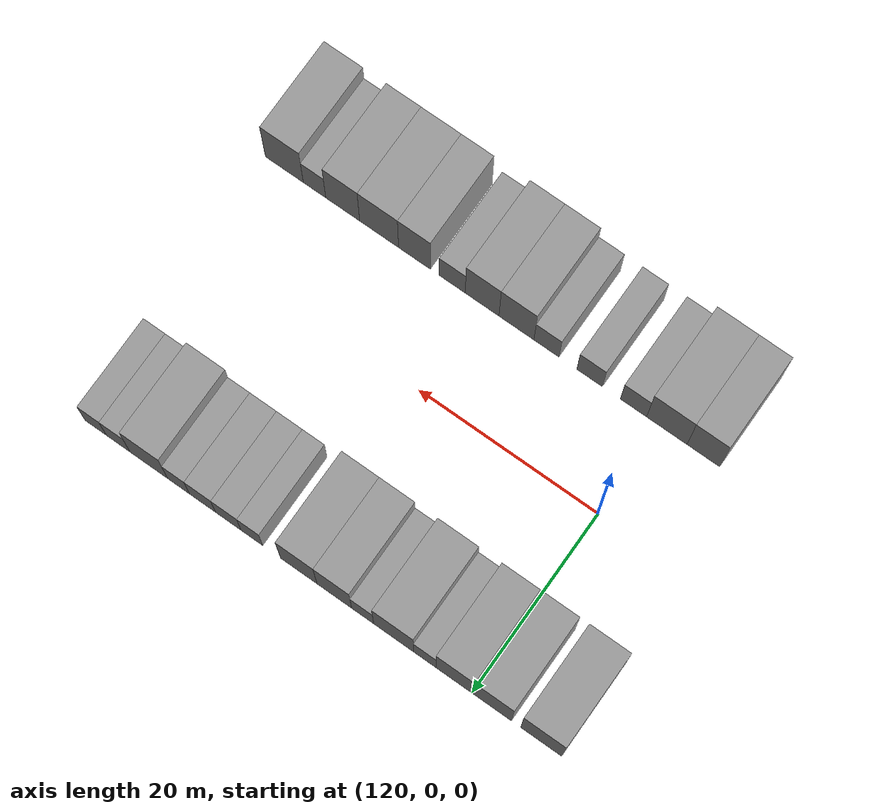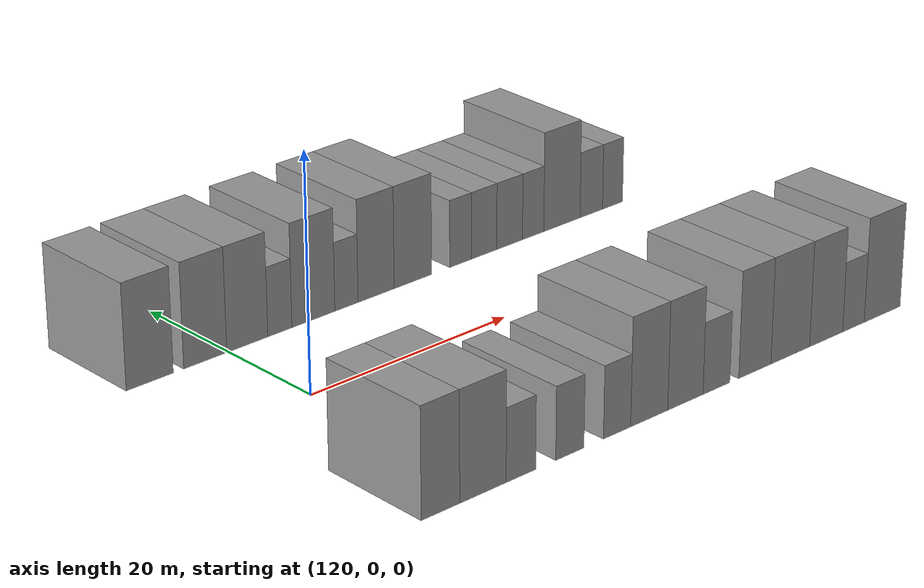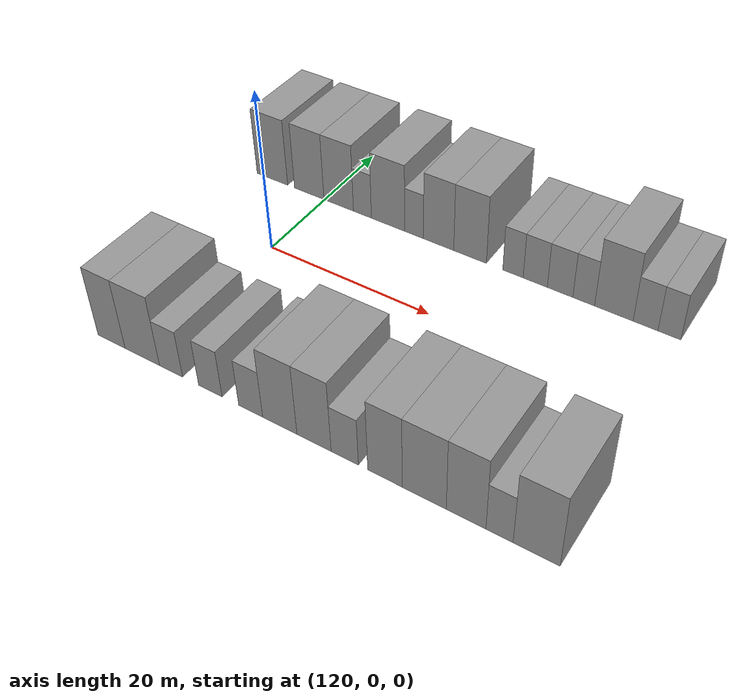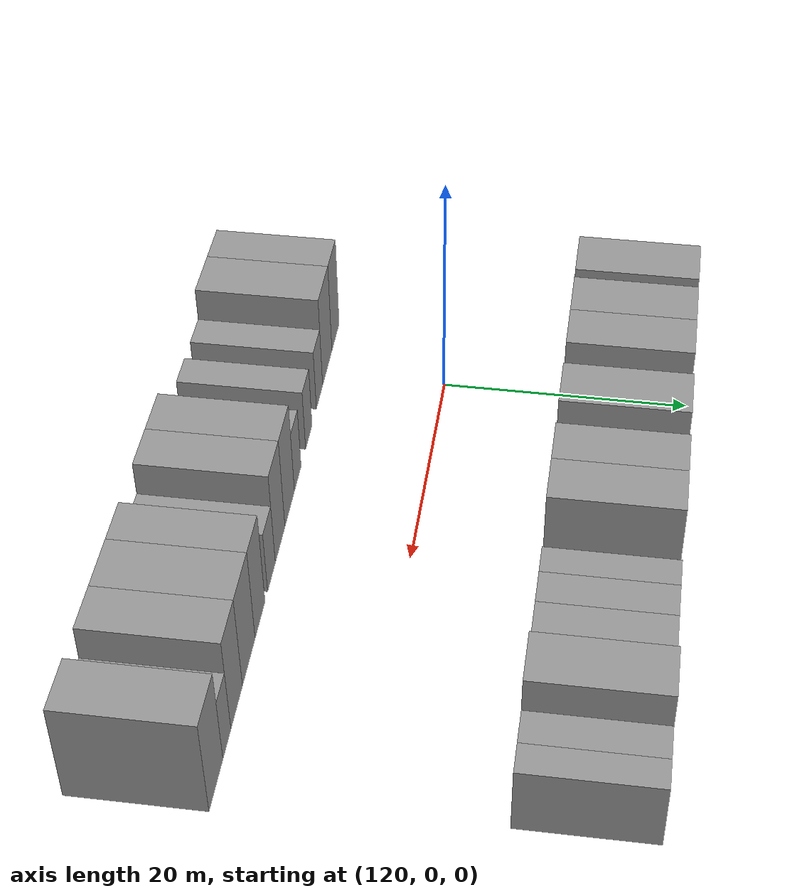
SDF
<sdf version="1.6">
 <world name="default">
  <model name="building_29">
   <static>1</static>
   <pose>112.4363 15.0000 0 0.000000 0.000000 1.570796</pose>
   <link name="link">
    <pose>0 0 4.50 0 0 0</pose>
    <collision name="collision"><geometry><box><size>10.0000 4.4717 9.0000</size></box></geometry></collision>
    <visual name="visual">
     <cast_shadows>0</cast_shadows>
     <geometry><box><size>10.0000 4.4717 9.0000</size></box></geometry>
     <material>
      <script>
       <uri>model://grey_wall/materials/scripts</uri>
       <uri>model://grey_wall/materials/textures</uri>
       <name>vrc/grey_wall</name>
      </script>
     </material>
    </visual>
   </link>
  </model>
  <model name="building_30">
   <static>1</static>
   <pose>117.7677 15.0000 0 0.000000 0.000000 1.570796</pose>
   <link name="link">
    <pose>0 0 4.50 0 0 0</pose>
    <collision name="collision"><geometry><box><size>10.0000 4.1911 9.0000</size></box></geometry></collision>
    <visual name="visual">
     <cast_shadows>0</cast_shadows>
     <geometry><box><size>10.0000 4.1911 9.0000</size></box></geometry>
     <material>
      <script>
       <uri>model://grey_wall/materials/scripts</uri>
       <uri>model://grey_wall/materials/textures</uri>
       <name>vrc/grey_wall</name>
      </script>
     </material>
    </visual>
   </link>
  </model>
  <model name="building_31">
   <static>1</static>
   <pose>121.9125 15.0000 0 0.000000 0.000000 1.570796</pose>
   <link name="link">
    <pose>0 0 4.50 0 0 0</pose>
    <collision name="collision"><geometry><box><size>10.0000 4.0984 9.0000</size></box></geometry></collision>
    <visual name="visual">
     <cast_shadows>0</cast_shadows>
     <geometry><box><size>10.0000 4.0984 9.0000</size></box></geometry>
     <material>
      <script>
       <uri>model://grey_wall/materials/scripts</uri>
       <uri>model://grey_wall/materials/textures</uri>
       <name>vrc/grey_wall</name>
      </script>
     </material>
    </visual>
   </link>
  </model>
  <model name="building_32">
   <static>1</static>
   <pose>125.1835 15.0000 0 0.000000 0.000000 1.570796</pose>
   <link name="link">
    <pose>0 0 3.00 0 0 0</pose>
    <collision name="collision"><geometry><box><size>10.0000 2.4436 6.0000</size></box></geometry></collision>
    <visual name="visual">
     <cast_shadows>0</cast_shadows>
     <geometry><box><size>10.0000 2.4436 6.0000</size></box></geometry>
     <material>
      <script>
       <uri>model://grey_wall/materials/scripts</uri>
       <uri>model://grey_wall/materials/textures</uri>
       <name>vrc/grey_wall</name>
      </script>
     </material>
    </visual>
   </link>
  </model>
  <model name="building_33">
   <static>1</static>
   <pose>128.6230 15.0000 0 0.000000 0.000000 1.570796</pose>
   <link name="link">
    <pose>0 0 4.50 0 0 0</pose>
    <collision name="collision"><geometry><box><size>10.0000 4.4353 9.0000</size></box></geometry></collision>
    <visual name="visual">
     <cast_shadows>0</cast_shadows>
     <geometry><box><size>10.0000 4.4353 9.0000</size></box></geometry>
     <material>
      <script>
       <uri>model://grey_wall/materials/scripts</uri>
       <uri>model://grey_wall/materials/textures</uri>
       <name>vrc/grey_wall</name>
      </script>
     </material>
    </visual>
   </link>
  </model>
  <model name="building_34">
   <static>1</static>
   <pose>132.0591 15.0000 0 0.000000 0.000000 1.570796</pose>
   <link name="link">
    <pose>0 0 3.00 0 0 0</pose>
    <collision name="collision"><geometry><box><size>10.0000 2.4370 6.0000</size></box></geometry></collision>
    <visual name="visual">
     <cast_shadows>0</cast_shadows>
     <geometry><box><size>10.0000 2.4370 6.0000</size></box></geometry>
     <material>
      <script>
       <uri>model://grey_wall/materials/scripts</uri>
       <uri>model://grey_wall/materials/textures</uri>
       <name>vrc/grey_wall</name>
      </script>
     </material>
    </visual>
   </link>
  </model>
  <model name="building_35">
   <static>1</static>
   <pose>135.2093 15.0000 0 0.000000 0.000000 1.570796</pose>
   <link name="link">
    <pose>0 0 4.50 0 0 0</pose>
    <collision name="collision"><geometry><box><size>10.0000 3.8633 9.0000</size></box></geometry></collision>
    <visual name="visual">
     <cast_shadows>0</cast_shadows>
     <geometry><box><size>10.0000 3.8633 9.0000</size></box></geometry>
     <material>
      <script>
       <uri>model://grey_wall/materials/scripts</uri>
       <uri>model://grey_wall/materials/textures</uri>
       <name>vrc/grey_wall</name>
      </script>
     </material>
    </visual>
   </link>
  </model>
  <model name="building_36">
   <static>1</static>
   <pose>139.1776 15.0000 0 0.000000 0.000000 1.570796</pose>
   <link name="link">
    <pose>0 0 4.50 0 0 0</pose>
    <collision name="collision"><geometry><box><size>10.0000 4.0733 9.0000</size></box></geometry></collision>
    <visual name="visual">
     <cast_shadows>0</cast_shadows>
     <geometry><box><size>10.0000 4.0733 9.0000</size></box></geometry>
     <material>
      <script>
       <uri>model://grey_wall/materials/scripts</uri>
       <uri>model://grey_wall/materials/textures</uri>
       <name>vrc/grey_wall</name>
      </script>
     </material>
    </visual>
   </link>
  </model>
  <model name="building_37">
   <static>1</static>
   <pose>144.4337 15.0000 0 0.000000 0.000000 1.570796</pose>
   <link name="link">
    <pose>0 0 3.00 0 0 0</pose>
    <collision name="collision"><geometry><box><size>10.0000 2.4388 6.0000</size></box></geometry></collision>
    <visual name="visual">
     <cast_shadows>0</cast_shadows>
     <geometry><box><size>10.0000 2.4388 6.0000</size></box></geometry>
     <material>
      <script>
       <uri>model://grey_wall/materials/scripts</uri>
       <uri>model://grey_wall/materials/textures</uri>
       <name>vrc/grey_wall</name>
      </script>
     </material>
    </visual>
   </link>
  </model>
  <model name="building_38">
   <static>1</static>
   <pose>147.0817 15.0000 0 0.000000 0.000000 1.570796</pose>
   <link name="link">
    <pose>0 0 3.00 0 0 0</pose>
    <collision name="collision"><geometry><box><size>10.0000 2.8573 6.0000</size></box></geometry></collision>
    <visual name="visual">
     <cast_shadows>0</cast_shadows>
     <geometry><box><size>10.0000 2.8573 6.0000</size></box></geometry>
     <material>
      <script>
       <uri>model://grey_wall/materials/scripts</uri>
       <uri>model://grey_wall/materials/textures</uri>
       <name>vrc/grey_wall</name>
      </script>
     </material>
    </visual>
   </link>
  </model>
  <model name="building_39">
   <static>1</static>
   <pose>149.9892 15.0000 0 0.000000 0.000000 1.570796</pose>
   <link name="link">
    <pose>0 0 3.00 0 0 0</pose>
    <collision name="collision"><geometry><box><size>10.0000 2.9577 6.0000</size></box></geometry></collision>
    <visual name="visual">
     <cast_shadows>0</cast_shadows>
     <geometry><box><size>10.0000 2.9577 6.0000</size></box></geometry>
     <material>
      <script>
       <uri>model://grey_wall/materials/scripts</uri>
       <uri>model://grey_wall/materials/textures</uri>
       <name>vrc/grey_wall</name>
      </script>
     </material>
    </visual>
   </link>
  </model>
  <model name="building_40">
   <static>1</static>
   <pose>152.7050 15.0000 0 0.000000 0.000000 1.570796</pose>
   <link name="link">
    <pose>0 0 3.00 0 0 0</pose>
    <collision name="collision"><geometry><box><size>10.0000 2.4739 6.0000</size></box></geometry></collision>
    <visual name="visual">
     <cast_shadows>0</cast_shadows>
     <geometry><box><size>10.0000 2.4739 6.0000</size></box></geometry>
     <material>
      <script>
       <uri>model://grey_wall/materials/scripts</uri>
       <uri>model://grey_wall/materials/textures</uri>
       <name>vrc/grey_wall</name>
      </script>
     </material>
    </visual>
   </link>
  </model>
  <model name="building_41">
   <static>1</static>
   <pose>156.0827 15.0000 0 0.000000 0.000000 1.570796</pose>
   <link name="link">
    <pose>0 0 4.50 0 0 0</pose>
    <collision name="collision"><geometry><box><size>10.0000 4.2815 9.0000</size></box></geometry></collision>
    <visual name="visual">
     <cast_shadows>0</cast_shadows>
     <geometry><box><size>10.0000 4.2815 9.0000</size></box></geometry>
     <material>
      <script>
       <uri>model://grey_wall/materials/scripts</uri>
       <uri>model://grey_wall/materials/textures</uri>
       <name>vrc/grey_wall</name>
      </script>
     </material>
    </visual>
   </link>
  </model>
  <model name="building_42">
   <static>1</static>
   <pose>159.5707 15.0000 0 0.000000 0.000000 1.570796</pose>
   <link name="link">
    <pose>0 0 3.00 0 0 0</pose>
    <collision name="collision"><geometry><box><size>10.0000 2.6945 6.0000</size></box></geometry></collision>
    <visual name="visual">
     <cast_shadows>0</cast_shadows>
     <geometry><box><size>10.0000 2.6945 6.0000</size></box></geometry>
     <material>
      <script>
       <uri>model://grey_wall/materials/scripts</uri>
       <uri>model://grey_wall/materials/textures</uri>
       <name>vrc/grey_wall</name>
      </script>
     </material>
    </visual>
   </link>
  </model>
  <model name="building_43">
   <static>1</static>
   <pose>162.1420 15.0000 0 0.000000 0.000000 1.570796</pose>
   <link name="link">
    <pose>0 0 3.00 0 0 0</pose>
    <collision name="collision"><geometry><box><size>10.0000 2.4482 6.0000</size></box></geometry></collision>
    <visual name="visual">
     <cast_shadows>0</cast_shadows>
     <geometry><box><size>10.0000 2.4482 6.0000</size></box></geometry>
     <material>
      <script>
       <uri>model://grey_wall/materials/scripts</uri>
       <uri>model://grey_wall/materials/textures</uri>
       <name>vrc/grey_wall</name>
      </script>
     </material>
    </visual>
   </link>
  </model>
  <model name="building_85">
   <static>1</static>
   <pose>115.1576 -15.0000 0 0.000000 0.000000 1.570796</pose>
   <link name="link">
    <pose>0 0 4.50 0 0 0</pose>
    <collision name="collision"><geometry><box><size>10.0000 3.6153 9.0000</size></box></geometry></collision>
    <visual name="visual">
     <cast_shadows>0</cast_shadows>
     <geometry><box><size>10.0000 3.6153 9.0000</size></box></geometry>
     <material>
      <script>
       <uri>model://grey_wall/materials/scripts</uri>
       <uri>model://grey_wall/materials/textures</uri>
       <name>vrc/grey_wall</name>
      </script>
     </material>
    </visual>
   </link>
  </model>
  <model name="building_86">
   <static>1</static>
   <pose>119.2056 -15.0000 0 0.000000 0.000000 1.570796</pose>
   <link name="link">
    <pose>0 0 4.50 0 0 0</pose>
    <collision name="collision"><geometry><box><size>10.0000 4.4806 9.0000</size></box></geometry></collision>
    <visual name="visual">
     <cast_shadows>0</cast_shadows>
     <geometry><box><size>10.0000 4.4806 9.0000</size></box></geometry>
     <material>
      <script>
       <uri>model://grey_wall/materials/scripts</uri>
       <uri>model://grey_wall/materials/textures</uri>
       <name>vrc/grey_wall</name>
      </script>
     </material>
    </visual>
   </link>
  </model>
  <model name="building_87">
   <static>1</static>
   <pose>122.9063 -15.0000 0 0.000000 0.000000 1.570796</pose>
   <link name="link">
    <pose>0 0 3.00 0 0 0</pose>
    <collision name="collision"><geometry><box><size>10.0000 2.9209 6.0000</size></box></geometry></collision>
    <visual name="visual">
     <cast_shadows>0</cast_shadows>
     <geometry><box><size>10.0000 2.9209 6.0000</size></box></geometry>
     <material>
      <script>
       <uri>model://grey_wall/materials/scripts</uri>
       <uri>model://grey_wall/materials/textures</uri>
       <name>vrc/grey_wall</name>
      </script>
     </material>
    </visual>
   </link>
  </model>
  <model name="building_88">
   <static>1</static>
   <pose>127.7978 -15.0000 0 0.000000 0.000000 1.570796</pose>
   <link name="link">
    <pose>0 0 3.00 0 0 0</pose>
    <collision name="collision"><geometry><box><size>10.0000 2.8621 6.0000</size></box></geometry></collision>
    <visual name="visual">
     <cast_shadows>0</cast_shadows>
     <geometry><box><size>10.0000 2.8621 6.0000</size></box></geometry>
     <material>
      <script>
       <uri>model://grey_wall/materials/scripts</uri>
       <uri>model://grey_wall/materials/textures</uri>
       <name>vrc/grey_wall</name>
      </script>
     </material>
    </visual>
   </link>
  </model>
  <model name="building_89">
   <static>1</static>
   <pose>132.6413 -15.0000 0 0.000000 0.000000 1.570796</pose>
   <link name="link">
    <pose>0 0 3.00 0 0 0</pose>
    <collision name="collision"><geometry><box><size>10.0000 2.8248 6.0000</size></box></geometry></collision>
    <visual name="visual">
     <cast_shadows>0</cast_shadows>
     <geometry><box><size>10.0000 2.8248 6.0000</size></box></geometry>
     <material>
      <script>
       <uri>model://grey_wall/materials/scripts</uri>
       <uri>model://grey_wall/materials/textures</uri>
       <name>vrc/grey_wall</name>
      </script>
     </material>
    </visual>
   </link>
  </model>
  <model name="building_90">
   <static>1</static>
   <pose>136.0219 -15.0000 0 0.000000 0.000000 1.570796</pose>
   <link name="link">
    <pose>0 0 4.50 0 0 0</pose>
    <collision name="collision"><geometry><box><size>10.0000 3.9365 9.0000</size></box></geometry></collision>
    <visual name="visual">
     <cast_shadows>0</cast_shadows>
     <geometry><box><size>10.0000 3.9365 9.0000</size></box></geometry>
     <material>
      <script>
       <uri>model://grey_wall/materials/scripts</uri>
       <uri>model://grey_wall/materials/textures</uri>
       <name>vrc/grey_wall</name>
      </script>
     </material>
    </visual>
   </link>
  </model>
  <model name="building_91">
   <static>1</static>
   <pose>139.8984 -15.0000 0 0.000000 0.000000 1.570796</pose>
   <link name="link">
    <pose>0 0 4.50 0 0 0</pose>
    <collision name="collision"><geometry><box><size>10.0000 3.8166 9.0000</size></box></geometry></collision>
    <visual name="visual">
     <cast_shadows>0</cast_shadows>
     <geometry><box><size>10.0000 3.8166 9.0000</size></box></geometry>
     <material>
      <script>
       <uri>model://grey_wall/materials/scripts</uri>
       <uri>model://grey_wall/materials/textures</uri>
       <name>vrc/grey_wall</name>
      </script>
     </material>
    </visual>
   </link>
  </model>
  <model name="building_92">
   <static>1</static>
   <pose>143.2814 -15.0000 0 0.000000 0.000000 1.570796</pose>
   <link name="link">
    <pose>0 0 3.00 0 0 0</pose>
    <collision name="collision"><geometry><box><size>10.0000 2.9494 6.0000</size></box></geometry></collision>
    <visual name="visual">
     <cast_shadows>0</cast_shadows>
     <geometry><box><size>10.0000 2.9494 6.0000</size></box></geometry>
     <material>
      <script>
       <uri>model://grey_wall/materials/scripts</uri>
       <uri>model://grey_wall/materials/textures</uri>
       <name>vrc/grey_wall</name>
      </script>
     </material>
    </visual>
   </link>
  </model>
  <model name="building_93">
   <static>1</static>
   <pose>147.5710 -15.0000 0 0.000000 0.000000 1.570796</pose>
   <link name="link">
    <pose>0 0 4.50 0 0 0</pose>
    <collision name="collision"><geometry><box><size>10.0000 3.6298 9.0000</size></box></geometry></collision>
    <visual name="visual">
     <cast_shadows>0</cast_shadows>
     <geometry><box><size>10.0000 3.6298 9.0000</size></box></geometry>
     <material>
      <script>
       <uri>model://grey_wall/materials/scripts</uri>
       <uri>model://grey_wall/materials/textures</uri>
       <name>vrc/grey_wall</name>
      </script>
     </material>
    </visual>
   </link>
  </model>
  <model name="building_94">
   <static>1</static>
   <pose>151.6131 -15.0000 0 0.000000 0.000000 1.570796</pose>
   <link name="link">
    <pose>0 0 4.50 0 0 0</pose>
    <collision name="collision"><geometry><box><size>10.0000 4.4543 9.0000</size></box></geometry></collision>
    <visual name="visual">
     <cast_shadows>0</cast_shadows>
     <geometry><box><size>10.0000 4.4543 9.0000</size></box></geometry>
     <material>
      <script>
       <uri>model://grey_wall/materials/scripts</uri>
       <uri>model://grey_wall/materials/textures</uri>
       <name>vrc/grey_wall</name>
      </script>
     </material>
    </visual>
   </link>
  </model>
  <model name="building_95">
   <static>1</static>
   <pose>155.7867 -15.0000 0 0.000000 0.000000 1.570796</pose>
   <link name="link">
    <pose>0 0 4.50 0 0 0</pose>
    <collision name="collision"><geometry><box><size>10.0000 3.8929 9.0000</size></box></geometry></collision>
    <visual name="visual">
     <cast_shadows>0</cast_shadows>
     <geometry><box><size>10.0000 3.8929 9.0000</size></box></geometry>
     <material>
      <script>
       <uri>model://grey_wall/materials/scripts</uri>
       <uri>model://grey_wall/materials/textures</uri>
       <name>vrc/grey_wall</name>
      </script>
     </material>
    </visual>
   </link>
  </model>
  <model name="building_96">
   <static>1</static>
   <pose>159.0296 -15.0000 0 0.000000 0.000000 1.570796</pose>
   <link name="link">
    <pose>0 0 3.00 0 0 0</pose>
    <collision name="collision"><geometry><box><size>10.0000 2.5929 6.0000</size></box></geometry></collision>
    <visual name="visual">
     <cast_shadows>0</cast_shadows>
     <geometry><box><size>10.0000 2.5929 6.0000</size></box></geometry>
     <material>
      <script>
       <uri>model://grey_wall/materials/scripts</uri>
       <uri>model://grey_wall/materials/textures</uri>
       <name>vrc/grey_wall</name>
      </script>
     </material>
    </visual>
   </link>
  </model>
  <model name="building_97">
   <static>1</static>
   <pose>162.5105 -15.0000 0 0.000000 0.000000 1.570796</pose>
   <link name="link">
    <pose>0 0 4.50 0 0 0</pose>
    <collision name="collision"><geometry><box><size>10.0000 4.3689 9.0000</size></box></geometry></collision>
    <visual name="visual">
     <cast_shadows>0</cast_shadows>
     <geometry><box><size>10.0000 4.3689 9.0000</size></box></geometry>
     <material>
      <script>
       <uri>model://grey_wall/materials/scripts</uri>
       <uri>model://grey_wall/materials/textures</uri>
       <name>vrc/grey_wall</name>
      </script>
     </material>
    </visual>
   </link>
  </model>
 </world>
</sdf>
